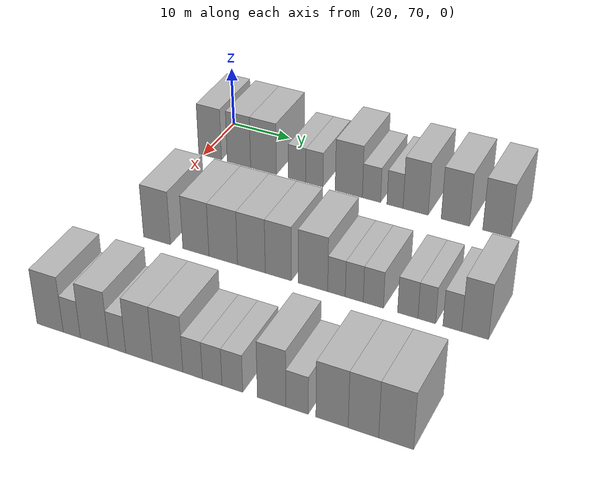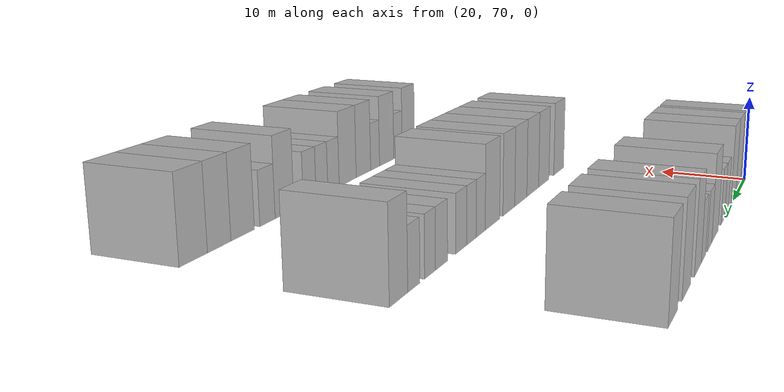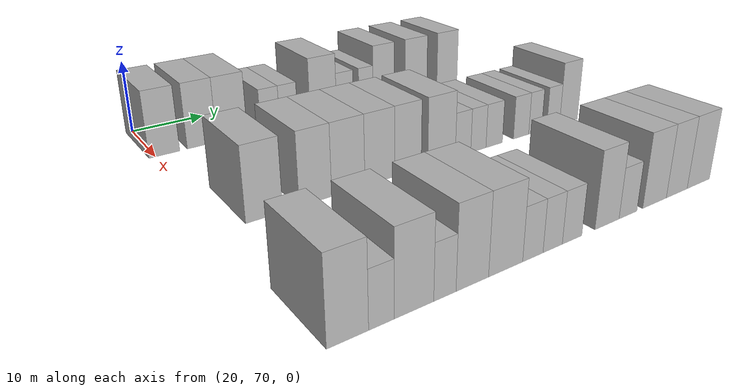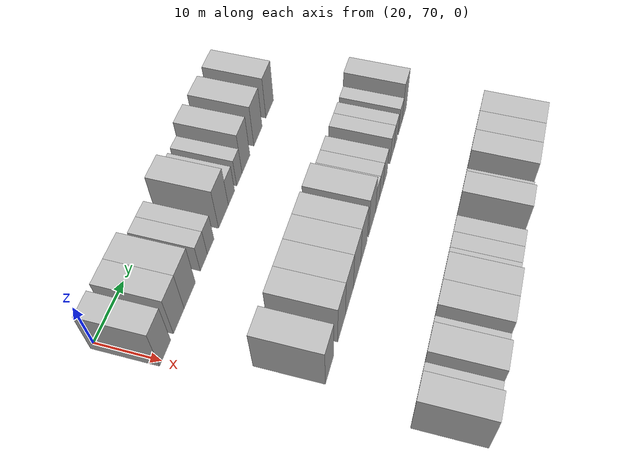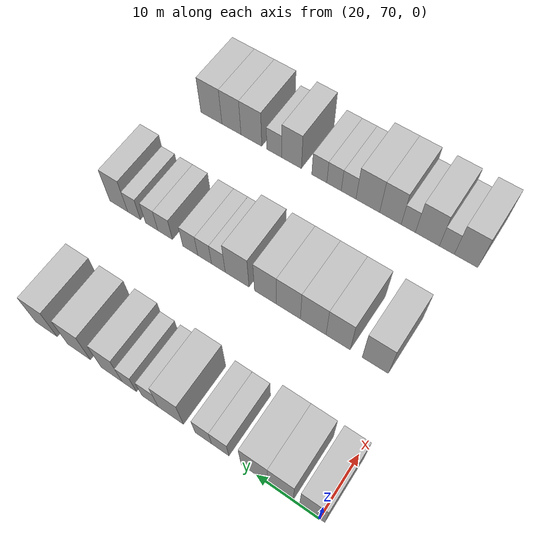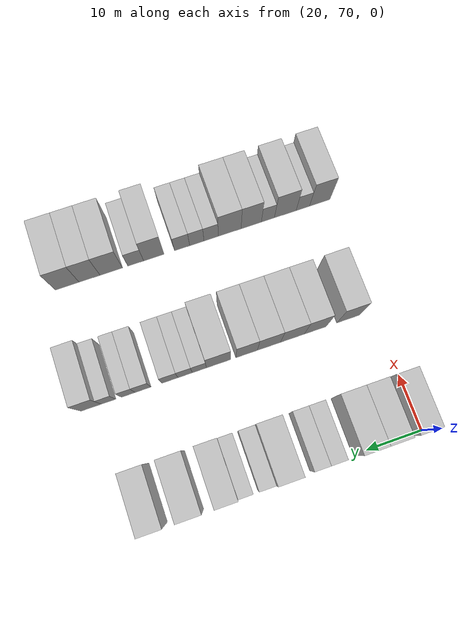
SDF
<sdf version="1.6">
 <world name="default">
  <model name="building_113">
   <static>1</static>
   <pose>25.0000 71.1456 0 0.000000 0.000000 0.000000</pose>
   <link name="link">
    <pose>0 0 4.50 0 0 0</pose>
    <collision name="collision"><geometry><box><size>10.0000 3.9665 9.0000</size></box></geometry></collision>
    <visual name="visual">
     <cast_shadows>0</cast_shadows>
     <geometry><box><size>10.0000 3.9665 9.0000</size></box></geometry>
     <material>
      <script>
       <uri>model://HANNAS_wall/materials/scripts</uri>
       <uri>model://HANNAS_wall/materials/textures</uri>
       <name>vrc/HANNAS_wall</name>
      </script>
     </material>
    </visual>
   </link>
  </model>
  <model name="building_114">
   <static>1</static>
   <pose>25.0000 76.1323 0 0.000000 0.000000 0.000000</pose>
   <link name="link">
    <pose>0 0 4.50 0 0 0</pose>
    <collision name="collision"><geometry><box><size>10.0000 4.0069 9.0000</size></box></geometry></collision>
    <visual name="visual">
     <cast_shadows>0</cast_shadows>
     <geometry><box><size>10.0000 4.0069 9.0000</size></box></geometry>
     <material>
      <script>
       <uri>model://HANNAS_wall/materials/scripts</uri>
       <uri>model://HANNAS_wall/materials/textures</uri>
       <name>vrc/HANNAS_wall</name>
      </script>
     </material>
    </visual>
   </link>
  </model>
  <model name="building_115">
   <static>1</static>
   <pose>25.0000 80.3190 0 0.000000 0.000000 0.000000</pose>
   <link name="link">
    <pose>0 0 4.50 0 0 0</pose>
    <collision name="collision"><geometry><box><size>10.0000 4.3665 9.0000</size></box></geometry></collision>
    <visual name="visual">
     <cast_shadows>0</cast_shadows>
     <geometry><box><size>10.0000 4.3665 9.0000</size></box></geometry>
     <material>
      <script>
       <uri>model://HANNAS_wall/materials/scripts</uri>
       <uri>model://HANNAS_wall/materials/textures</uri>
       <name>vrc/HANNAS_wall</name>
      </script>
     </material>
    </visual>
   </link>
  </model>
  <model name="building_116">
   <static>1</static>
   <pose>25.0000 85.9456 0 0.000000 0.000000 0.000000</pose>
   <link name="link">
    <pose>0 0 3.00 0 0 0</pose>
    <collision name="collision"><geometry><box><size>10.0000 2.8868 6.0000</size></box></geometry></collision>
    <visual name="visual">
     <cast_shadows>0</cast_shadows>
     <geometry><box><size>10.0000 2.8868 6.0000</size></box></geometry>
     <material>
      <script>
       <uri>model://HANNAS_wall/materials/scripts</uri>
       <uri>model://HANNAS_wall/materials/textures</uri>
       <name>vrc/HANNAS_wall</name>
      </script>
     </material>
    </visual>
   </link>
  </model>
  <model name="building_117">
   <static>1</static>
   <pose>25.0000 88.7950 0 0.000000 0.000000 0.000000</pose>
   <link name="link">
    <pose>0 0 3.00 0 0 0</pose>
    <collision name="collision"><geometry><box><size>10.0000 2.8119 6.0000</size></box></geometry></collision>
    <visual name="visual">
     <cast_shadows>0</cast_shadows>
     <geometry><box><size>10.0000 2.8119 6.0000</size></box></geometry>
     <material>
      <script>
       <uri>model://HANNAS_wall/materials/scripts</uri>
       <uri>model://HANNAS_wall/materials/textures</uri>
       <name>vrc/HANNAS_wall</name>
      </script>
     </material>
    </visual>
   </link>
  </model>
  <model name="building_118">
   <static>1</static>
   <pose>25.0000 94.3874 0 0.000000 0.000000 0.000000</pose>
   <link name="link">
    <pose>0 0 4.50 0 0 0</pose>
    <collision name="collision"><geometry><box><size>10.0000 4.3730 9.0000</size></box></geometry></collision>
    <visual name="visual">
     <cast_shadows>0</cast_shadows>
     <geometry><box><size>10.0000 4.3730 9.0000</size></box></geometry>
     <material>
      <script>
       <uri>model://HANNAS_wall/materials/scripts</uri>
       <uri>model://HANNAS_wall/materials/textures</uri>
       <name>vrc/HANNAS_wall</name>
      </script>
     </material>
    </visual>
   </link>
  </model>
  <model name="building_119">
   <static>1</static>
   <pose>25.0000 98.0199 0 0.000000 0.000000 0.000000</pose>
   <link name="link">
    <pose>0 0 3.00 0 0 0</pose>
    <collision name="collision"><geometry><box><size>10.0000 2.8920 6.0000</size></box></geometry></collision>
    <visual name="visual">
     <cast_shadows>0</cast_shadows>
     <geometry><box><size>10.0000 2.8920 6.0000</size></box></geometry>
     <material>
      <script>
       <uri>model://HANNAS_wall/materials/scripts</uri>
       <uri>model://HANNAS_wall/materials/textures</uri>
       <name>vrc/HANNAS_wall</name>
      </script>
     </material>
    </visual>
   </link>
  </model>
  <model name="building_120">
   <static>1</static>
   <pose>25.0000 101.7340 0 0.000000 0.000000 0.000000</pose>
   <link name="link">
    <pose>0 0 3.00 0 0 0</pose>
    <collision name="collision"><geometry><box><size>10.0000 2.5364 6.0000</size></box></geometry></collision>
    <visual name="visual">
     <cast_shadows>0</cast_shadows>
     <geometry><box><size>10.0000 2.5364 6.0000</size></box></geometry>
     <material>
      <script>
       <uri>model://HANNAS_wall/materials/scripts</uri>
       <uri>model://HANNAS_wall/materials/textures</uri>
       <name>vrc/HANNAS_wall</name>
      </script>
     </material>
    </visual>
   </link>
  </model>
  <model name="building_121">
   <static>1</static>
   <pose>25.0000 104.9441 0 0.000000 0.000000 0.000000</pose>
   <link name="link">
    <pose>0 0 4.50 0 0 0</pose>
    <collision name="collision"><geometry><box><size>10.0000 3.8837 9.0000</size></box></geometry></collision>
    <visual name="visual">
     <cast_shadows>0</cast_shadows>
     <geometry><box><size>10.0000 3.8837 9.0000</size></box></geometry>
     <material>
      <script>
       <uri>model://HANNAS_wall/materials/scripts</uri>
       <uri>model://HANNAS_wall/materials/textures</uri>
       <name>vrc/HANNAS_wall</name>
      </script>
     </material>
    </visual>
   </link>
  </model>
  <model name="building_122">
   <static>1</static>
   <pose>25.0000 111.0240 0 0.000000 0.000000 0.000000</pose>
   <link name="link">
    <pose>0 0 4.50 0 0 0</pose>
    <collision name="collision"><geometry><box><size>10.0000 4.2762 9.0000</size></box></geometry></collision>
    <visual name="visual">
     <cast_shadows>0</cast_shadows>
     <geometry><box><size>10.0000 4.2762 9.0000</size></box></geometry>
     <material>
      <script>
       <uri>model://HANNAS_wall/materials/scripts</uri>
       <uri>model://HANNAS_wall/materials/textures</uri>
       <name>vrc/HANNAS_wall</name>
      </script>
     </material>
    </visual>
   </link>
  </model>
  <model name="building_123">
   <static>1</static>
   <pose>25.0000 117.2384 0 0.000000 0.000000 0.000000</pose>
   <link name="link">
    <pose>0 0 4.50 0 0 0</pose>
    <collision name="collision"><geometry><box><size>10.0000 4.1526 9.0000</size></box></geometry></collision>
    <visual name="visual">
     <cast_shadows>0</cast_shadows>
     <geometry><box><size>10.0000 4.1526 9.0000</size></box></geometry>
     <material>
      <script>
       <uri>model://HANNAS_wall/materials/scripts</uri>
       <uri>model://HANNAS_wall/materials/textures</uri>
       <name>vrc/HANNAS_wall</name>
      </script>
     </material>
    </visual>
   </link>
  </model>
  <model name="building_301">
   <static>1</static>
   <pose>47.0000 74.5888 0 0.000000 0.000000 0.000000</pose>
   <link name="link">
    <pose>0 0 4.50 0 0 0</pose>
    <collision name="collision"><geometry><box><size>10.0000 4.3350 9.0000</size></box></geometry></collision>
    <visual name="visual">
     <cast_shadows>0</cast_shadows>
     <geometry><box><size>10.0000 4.3350 9.0000</size></box></geometry>
     <material>
      <script>
       <uri>model://HANNAS_wall/materials/scripts</uri>
       <uri>model://HANNAS_wall/materials/textures</uri>
       <name>vrc/HANNAS_wall</name>
      </script>
     </material>
    </visual>
   </link>
  </model>
  <model name="building_302">
   <static>1</static>
   <pose>47.0000 80.8239 0 0.000000 0.000000 0.000000</pose>
   <link name="link">
    <pose>0 0 4.50 0 0 0</pose>
    <collision name="collision"><geometry><box><size>10.0000 4.1350 9.0000</size></box></geometry></collision>
    <visual name="visual">
     <cast_shadows>0</cast_shadows>
     <geometry><box><size>10.0000 4.1350 9.0000</size></box></geometry>
     <material>
      <script>
       <uri>model://HANNAS_wall/materials/scripts</uri>
       <uri>model://HANNAS_wall/materials/textures</uri>
       <name>vrc/HANNAS_wall</name>
      </script>
     </material>
    </visual>
   </link>
  </model>
  <model name="building_303">
   <static>1</static>
   <pose>47.0000 85.1183 0 0.000000 0.000000 0.000000</pose>
   <link name="link">
    <pose>0 0 4.50 0 0 0</pose>
    <collision name="collision"><geometry><box><size>10.0000 4.4538 9.0000</size></box></geometry></collision>
    <visual name="visual">
     <cast_shadows>0</cast_shadows>
     <geometry><box><size>10.0000 4.4538 9.0000</size></box></geometry>
     <material>
      <script>
       <uri>model://HANNAS_wall/materials/scripts</uri>
       <uri>model://HANNAS_wall/materials/textures</uri>
       <name>vrc/HANNAS_wall</name>
      </script>
     </material>
    </visual>
   </link>
  </model>
  <model name="building_304">
   <static>1</static>
   <pose>47.0000 89.4703 0 0.000000 0.000000 0.000000</pose>
   <link name="link">
    <pose>0 0 4.50 0 0 0</pose>
    <collision name="collision"><geometry><box><size>10.0000 4.2503 9.0000</size></box></geometry></collision>
    <visual name="visual">
     <cast_shadows>0</cast_shadows>
     <geometry><box><size>10.0000 4.2503 9.0000</size></box></geometry>
     <material>
      <script>
       <uri>model://HANNAS_wall/materials/scripts</uri>
       <uri>model://HANNAS_wall/materials/textures</uri>
       <name>vrc/HANNAS_wall</name>
      </script>
     </material>
    </visual>
   </link>
  </model>
  <model name="building_305">
   <static>1</static>
   <pose>47.0000 93.5619 0 0.000000 0.000000 0.000000</pose>
   <link name="link">
    <pose>0 0 4.50 0 0 0</pose>
    <collision name="collision"><geometry><box><size>10.0000 3.9329 9.0000</size></box></geometry></collision>
    <visual name="visual">
     <cast_shadows>0</cast_shadows>
     <geometry><box><size>10.0000 3.9329 9.0000</size></box></geometry>
     <material>
      <script>
       <uri>model://HANNAS_wall/materials/scripts</uri>
       <uri>model://HANNAS_wall/materials/textures</uri>
       <name>vrc/HANNAS_wall</name>
      </script>
     </material>
    </visual>
   </link>
  </model>
  <model name="building_306">
   <static>1</static>
   <pose>47.0000 98.7184 0 0.000000 0.000000 0.000000</pose>
   <link name="link">
    <pose>0 0 4.50 0 0 0</pose>
    <collision name="collision"><geometry><box><size>10.0000 4.3802 9.0000</size></box></geometry></collision>
    <visual name="visual">
     <cast_shadows>0</cast_shadows>
     <geometry><box><size>10.0000 4.3802 9.0000</size></box></geometry>
     <material>
      <script>
       <uri>model://HANNAS_wall/materials/scripts</uri>
       <uri>model://HANNAS_wall/materials/textures</uri>
       <name>vrc/HANNAS_wall</name>
      </script>
     </material>
    </visual>
   </link>
  </model>
  <model name="building_307">
   <static>1</static>
   <pose>47.0000 102.1914 0 0.000000 0.000000 0.000000</pose>
   <link name="link">
    <pose>0 0 3.00 0 0 0</pose>
    <collision name="collision"><geometry><box><size>10.0000 2.5658 6.0000</size></box></geometry></collision>
    <visual name="visual">
     <cast_shadows>0</cast_shadows>
     <geometry><box><size>10.0000 2.5658 6.0000</size></box></geometry>
     <material>
      <script>
       <uri>model://HANNAS_wall/materials/scripts</uri>
       <uri>model://HANNAS_wall/materials/textures</uri>
       <name>vrc/HANNAS_wall</name>
      </script>
     </material>
    </visual>
   </link>
  </model>
  <model name="building_308">
   <static>1</static>
   <pose>47.0000 104.7711 0 0.000000 0.000000 0.000000</pose>
   <link name="link">
    <pose>0 0 3.00 0 0 0</pose>
    <collision name="collision"><geometry><box><size>10.0000 2.5935 6.0000</size></box></geometry></collision>
    <visual name="visual">
     <cast_shadows>0</cast_shadows>
     <geometry><box><size>10.0000 2.5935 6.0000</size></box></geometry>
     <material>
      <script>
       <uri>model://HANNAS_wall/materials/scripts</uri>
       <uri>model://HANNAS_wall/materials/textures</uri>
       <name>vrc/HANNAS_wall</name>
      </script>
     </material>
    </visual>
   </link>
  </model>
  <model name="building_309">
   <static>1</static>
   <pose>47.0000 107.5105 0 0.000000 0.000000 0.000000</pose>
   <link name="link">
    <pose>0 0 3.00 0 0 0</pose>
    <collision name="collision"><geometry><box><size>10.0000 2.8855 6.0000</size></box></geometry></collision>
    <visual name="visual">
     <cast_shadows>0</cast_shadows>
     <geometry><box><size>10.0000 2.8855 6.0000</size></box></geometry>
     <material>
      <script>
       <uri>model://HANNAS_wall/materials/scripts</uri>
       <uri>model://HANNAS_wall/materials/textures</uri>
       <name>vrc/HANNAS_wall</name>
      </script>
     </material>
    </visual>
   </link>
  </model>
  <model name="building_310">
   <static>1</static>
   <pose>47.0000 112.3788 0 0.000000 0.000000 0.000000</pose>
   <link name="link">
    <pose>0 0 3.00 0 0 0</pose>
    <collision name="collision"><geometry><box><size>10.0000 2.8510 6.0000</size></box></geometry></collision>
    <visual name="visual">
     <cast_shadows>0</cast_shadows>
     <geometry><box><size>10.0000 2.8510 6.0000</size></box></geometry>
     <material>
      <script>
       <uri>model://HANNAS_wall/materials/scripts</uri>
       <uri>model://HANNAS_wall/materials/textures</uri>
       <name>vrc/HANNAS_wall</name>
      </script>
     </material>
    </visual>
   </link>
  </model>
  <model name="building_311">
   <static>1</static>
   <pose>47.0000 115.0303 0 0.000000 0.000000 0.000000</pose>
   <link name="link">
    <pose>0 0 3.00 0 0 0</pose>
    <collision name="collision"><geometry><box><size>10.0000 2.4521 6.0000</size></box></geometry></collision>
    <visual name="visual">
     <cast_shadows>0</cast_shadows>
     <geometry><box><size>10.0000 2.4521 6.0000</size></box></geometry>
     <material>
      <script>
       <uri>model://HANNAS_wall/materials/scripts</uri>
       <uri>model://HANNAS_wall/materials/textures</uri>
       <name>vrc/HANNAS_wall</name>
      </script>
     </material>
    </visual>
   </link>
  </model>
  <model name="building_312">
   <static>1</static>
   <pose>47.0000 118.5335 0 0.000000 0.000000 0.000000</pose>
   <link name="link">
    <pose>0 0 3.00 0 0 0</pose>
    <collision name="collision"><geometry><box><size>10.0000 2.5543 6.0000</size></box></geometry></collision>
    <visual name="visual">
     <cast_shadows>0</cast_shadows>
     <geometry><box><size>10.0000 2.5543 6.0000</size></box></geometry>
     <material>
      <script>
       <uri>model://HANNAS_wall/materials/scripts</uri>
       <uri>model://HANNAS_wall/materials/textures</uri>
       <name>vrc/HANNAS_wall</name>
      </script>
     </material>
    </visual>
   </link>
  </model>
  <model name="building_313">
   <static>1</static>
   <pose>47.0000 121.6259 0 0.000000 0.000000 0.000000</pose>
   <link name="link">
    <pose>0 0 4.50 0 0 0</pose>
    <collision name="collision"><geometry><box><size>10.0000 3.6306 9.0000</size></box></geometry></collision>
    <visual name="visual">
     <cast_shadows>0</cast_shadows>
     <geometry><box><size>10.0000 3.6306 9.0000</size></box></geometry>
     <material>
      <script>
       <uri>model://HANNAS_wall/materials/scripts</uri>
       <uri>model://HANNAS_wall/materials/textures</uri>
       <name>vrc/HANNAS_wall</name>
      </script>
     </material>
    </visual>
   </link>
  </model>
  <model name="building_494">
   <static>1</static>
   <pose>69.0000 71.5320 0 0.000000 0.000000 0.000000</pose>
   <link name="link">
    <pose>0 0 4.50 0 0 0</pose>
    <collision name="collision"><geometry><box><size>10.0000 4.0279 9.0000</size></box></geometry></collision>
    <visual name="visual">
     <cast_shadows>0</cast_shadows>
     <geometry><box><size>10.0000 4.0279 9.0000</size></box></geometry>
     <material>
      <script>
       <uri>model://HANNAS_wall/materials/scripts</uri>
       <uri>model://HANNAS_wall/materials/textures</uri>
       <name>vrc/HANNAS_wall</name>
      </script>
     </material>
    </visual>
   </link>
  </model>
  <model name="building_495">
   <static>1</static>
   <pose>69.0000 74.8431 0 0.000000 0.000000 0.000000</pose>
   <link name="link">
    <pose>0 0 3.00 0 0 0</pose>
    <collision name="collision"><geometry><box><size>10.0000 2.5943 6.0000</size></box></geometry></collision>
    <visual name="visual">
     <cast_shadows>0</cast_shadows>
     <geometry><box><size>10.0000 2.5943 6.0000</size></box></geometry>
     <material>
      <script>
       <uri>model://HANNAS_wall/materials/scripts</uri>
       <uri>model://HANNAS_wall/materials/textures</uri>
       <name>vrc/HANNAS_wall</name>
      </script>
     </material>
    </visual>
   </link>
  </model>
  <model name="building_496">
   <static>1</static>
   <pose>69.0000 78.2550 0 0.000000 0.000000 0.000000</pose>
   <link name="link">
    <pose>0 0 4.50 0 0 0</pose>
    <collision name="collision"><geometry><box><size>10.0000 4.2295 9.0000</size></box></geometry></collision>
    <visual name="visual">
     <cast_shadows>0</cast_shadows>
     <geometry><box><size>10.0000 4.2295 9.0000</size></box></geometry>
     <material>
      <script>
       <uri>model://HANNAS_wall/materials/scripts</uri>
       <uri>model://HANNAS_wall/materials/textures</uri>
       <name>vrc/HANNAS_wall</name>
      </script>
     </material>
    </visual>
   </link>
  </model>
  <model name="building_497">
   <static>1</static>
   <pose>69.0000 81.6356 0 0.000000 0.000000 0.000000</pose>
   <link name="link">
    <pose>0 0 3.00 0 0 0</pose>
    <collision name="collision"><geometry><box><size>10.0000 2.5318 6.0000</size></box></geometry></collision>
    <visual name="visual">
     <cast_shadows>0</cast_shadows>
     <geometry><box><size>10.0000 2.5318 6.0000</size></box></geometry>
     <material>
      <script>
       <uri>model://HANNAS_wall/materials/scripts</uri>
       <uri>model://HANNAS_wall/materials/textures</uri>
       <name>vrc/HANNAS_wall</name>
      </script>
     </material>
    </visual>
   </link>
  </model>
  <model name="building_498">
   <static>1</static>
   <pose>69.0000 84.8519 0 0.000000 0.000000 0.000000</pose>
   <link name="link">
    <pose>0 0 4.50 0 0 0</pose>
    <collision name="collision"><geometry><box><size>10.0000 3.9007 9.0000</size></box></geometry></collision>
    <visual name="visual">
     <cast_shadows>0</cast_shadows>
     <geometry><box><size>10.0000 3.9007 9.0000</size></box></geometry>
     <material>
      <script>
       <uri>model://HANNAS_wall/materials/scripts</uri>
       <uri>model://HANNAS_wall/materials/textures</uri>
       <name>vrc/HANNAS_wall</name>
      </script>
     </material>
    </visual>
   </link>
  </model>
  <model name="building_499">
   <static>1</static>
   <pose>69.0000 88.9824 0 0.000000 0.000000 0.000000</pose>
   <link name="link">
    <pose>0 0 4.50 0 0 0</pose>
    <collision name="collision"><geometry><box><size>10.0000 4.3603 9.0000</size></box></geometry></collision>
    <visual name="visual">
     <cast_shadows>0</cast_shadows>
     <geometry><box><size>10.0000 4.3603 9.0000</size></box></geometry>
     <material>
      <script>
       <uri>model://HANNAS_wall/materials/scripts</uri>
       <uri>model://HANNAS_wall/materials/textures</uri>
       <name>vrc/HANNAS_wall</name>
      </script>
     </material>
    </visual>
   </link>
  </model>
  <model name="building_500">
   <static>1</static>
   <pose>69.0000 92.5378 0 0.000000 0.000000 0.000000</pose>
   <link name="link">
    <pose>0 0 3.00 0 0 0</pose>
    <collision name="collision"><geometry><box><size>10.0000 2.7504 6.0000</size></box></geometry></collision>
    <visual name="visual">
     <cast_shadows>0</cast_shadows>
     <geometry><box><size>10.0000 2.7504 6.0000</size></box></geometry>
     <material>
      <script>
       <uri>model://HANNAS_wall/materials/scripts</uri>
       <uri>model://HANNAS_wall/materials/textures</uri>
       <name>vrc/HANNAS_wall</name>
      </script>
     </material>
    </visual>
   </link>
  </model>
  <model name="building_501">
   <static>1</static>
   <pose>69.0000 95.2735 0 0.000000 0.000000 0.000000</pose>
   <link name="link">
    <pose>0 0 3.00 0 0 0</pose>
    <collision name="collision"><geometry><box><size>10.0000 2.7210 6.0000</size></box></geometry></collision>
    <visual name="visual">
     <cast_shadows>0</cast_shadows>
     <geometry><box><size>10.0000 2.7210 6.0000</size></box></geometry>
     <material>
      <script>
       <uri>model://HANNAS_wall/materials/scripts</uri>
       <uri>model://HANNAS_wall/materials/textures</uri>
       <name>vrc/HANNAS_wall</name>
      </script>
     </material>
    </visual>
   </link>
  </model>
  <model name="building_502">
   <static>1</static>
   <pose>69.0000 98.0665 0 0.000000 0.000000 0.000000</pose>
   <link name="link">
    <pose>0 0 3.00 0 0 0</pose>
    <collision name="collision"><geometry><box><size>10.0000 2.8650 6.0000</size></box></geometry></collision>
    <visual name="visual">
     <cast_shadows>0</cast_shadows>
     <geometry><box><size>10.0000 2.8650 6.0000</size></box></geometry>
     <material>
      <script>
       <uri>model://HANNAS_wall/materials/scripts</uri>
       <uri>model://HANNAS_wall/materials/textures</uri>
       <name>vrc/HANNAS_wall</name>
      </script>
     </material>
    </visual>
   </link>
  </model>
  <model name="building_503">
   <static>1</static>
   <pose>69.0000 103.4158 0 0.000000 0.000000 0.000000</pose>
   <link name="link">
    <pose>0 0 4.50 0 0 0</pose>
    <collision name="collision"><geometry><box><size>10.0000 3.8335 9.0000</size></box></geometry></collision>
    <visual name="visual">
     <cast_shadows>0</cast_shadows>
     <geometry><box><size>10.0000 3.8335 9.0000</size></box></geometry>
     <material>
      <script>
       <uri>model://HANNAS_wall/materials/scripts</uri>
       <uri>model://HANNAS_wall/materials/textures</uri>
       <name>vrc/HANNAS_wall</name>
      </script>
     </material>
    </visual>
   </link>
  </model>
  <model name="building_504">
   <static>1</static>
   <pose>69.0000 106.8158 0 0.000000 0.000000 0.000000</pose>
   <link name="link">
    <pose>0 0 3.00 0 0 0</pose>
    <collision name="collision"><geometry><box><size>10.0000 2.9665 6.0000</size></box></geometry></collision>
    <visual name="visual">
     <cast_shadows>0</cast_shadows>
     <geometry><box><size>10.0000 2.9665 6.0000</size></box></geometry>
     <material>
      <script>
       <uri>model://HANNAS_wall/materials/scripts</uri>
       <uri>model://HANNAS_wall/materials/textures</uri>
       <name>vrc/HANNAS_wall</name>
      </script>
     </material>
    </visual>
   </link>
  </model>
  <model name="building_505">
   <static>1</static>
   <pose>69.0000 111.3915 0 0.000000 0.000000 0.000000</pose>
   <link name="link">
    <pose>0 0 4.50 0 0 0</pose>
    <collision name="collision"><geometry><box><size>10.0000 4.1850 9.0000</size></box></geometry></collision>
    <visual name="visual">
     <cast_shadows>0</cast_shadows>
     <geometry><box><size>10.0000 4.1850 9.0000</size></box></geometry>
     <material>
      <script>
       <uri>model://HANNAS_wall/materials/scripts</uri>
       <uri>model://HANNAS_wall/materials/textures</uri>
       <name>vrc/HANNAS_wall</name>
      </script>
     </material>
    </visual>
   </link>
  </model>
  <model name="building_506">
   <static>1</static>
   <pose>69.0000 115.4307 0 0.000000 0.000000 0.000000</pose>
   <link name="link">
    <pose>0 0 4.50 0 0 0</pose>
    <collision name="collision"><geometry><box><size>10.0000 3.8934 9.0000</size></box></geometry></collision>
    <visual name="visual">
     <cast_shadows>0</cast_shadows>
     <geometry><box><size>10.0000 3.8934 9.0000</size></box></geometry>
     <material>
      <script>
       <uri>model://HANNAS_wall/materials/scripts</uri>
       <uri>model://HANNAS_wall/materials/textures</uri>
       <name>vrc/HANNAS_wall</name>
      </script>
     </material>
    </visual>
   </link>
  </model>
  <model name="building_507">
   <static>1</static>
   <pose>69.0000 119.5663 0 0.000000 0.000000 0.000000</pose>
   <link name="link">
    <pose>0 0 4.50 0 0 0</pose>
    <collision name="collision"><geometry><box><size>10.0000 4.3779 9.0000</size></box></geometry></collision>
    <visual name="visual">
     <cast_shadows>0</cast_shadows>
     <geometry><box><size>10.0000 4.3779 9.0000</size></box></geometry>
     <material>
      <script>
       <uri>model://HANNAS_wall/materials/scripts</uri>
       <uri>model://HANNAS_wall/materials/textures</uri>
       <name>vrc/HANNAS_wall</name>
      </script>
     </material>
    </visual>
   </link>
  </model>
 </world>
</sdf>
